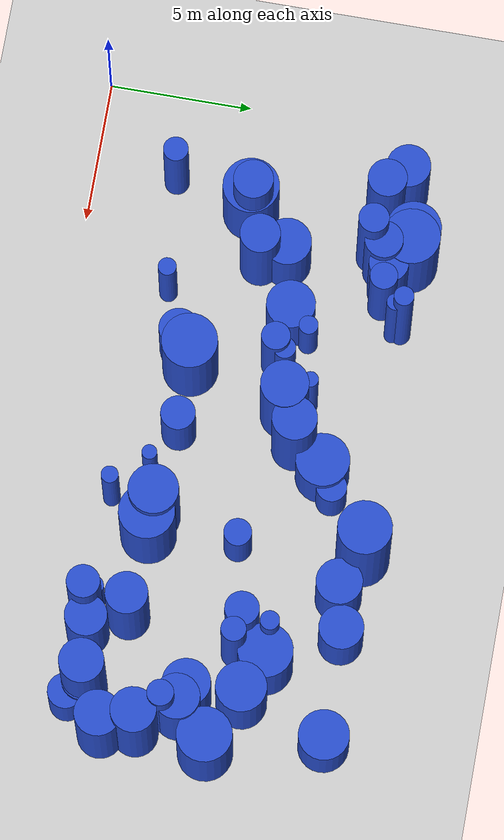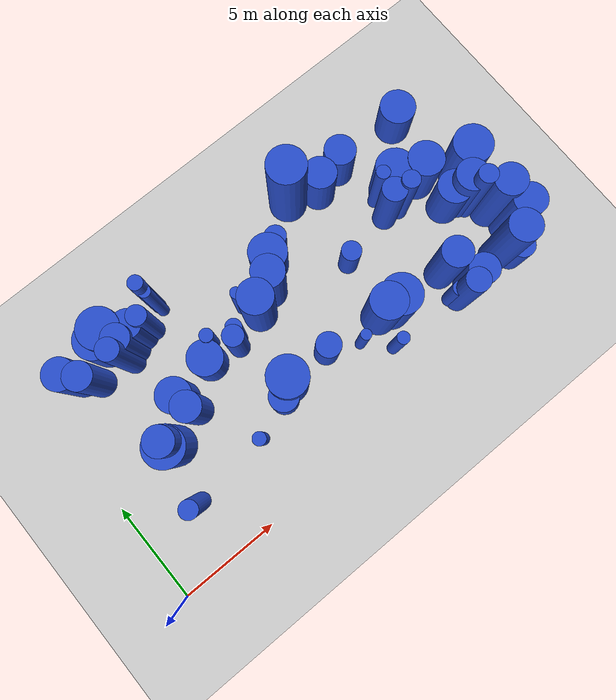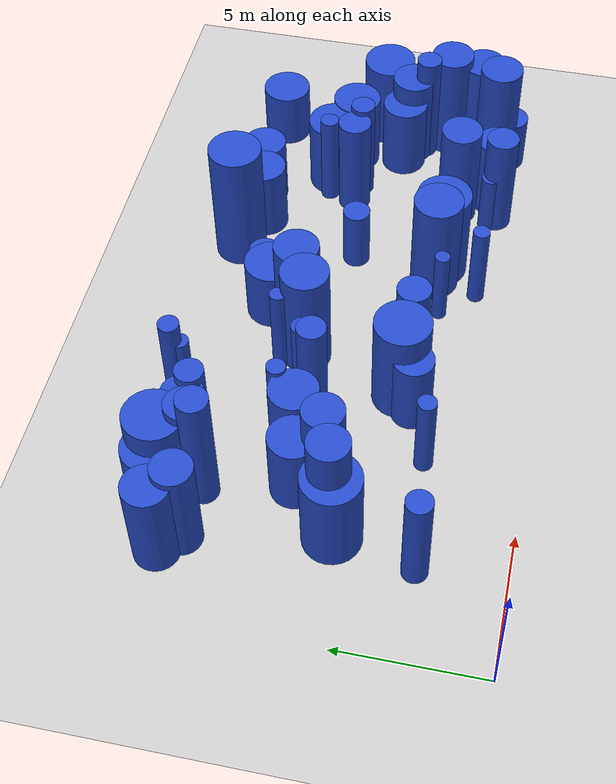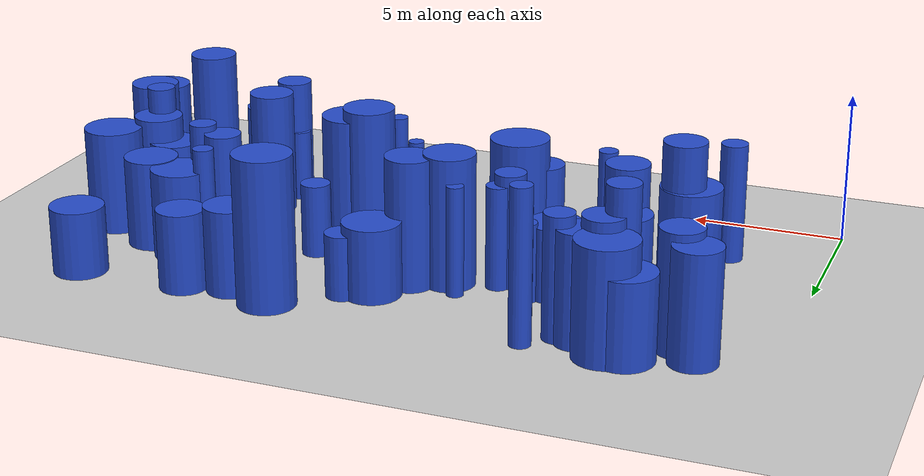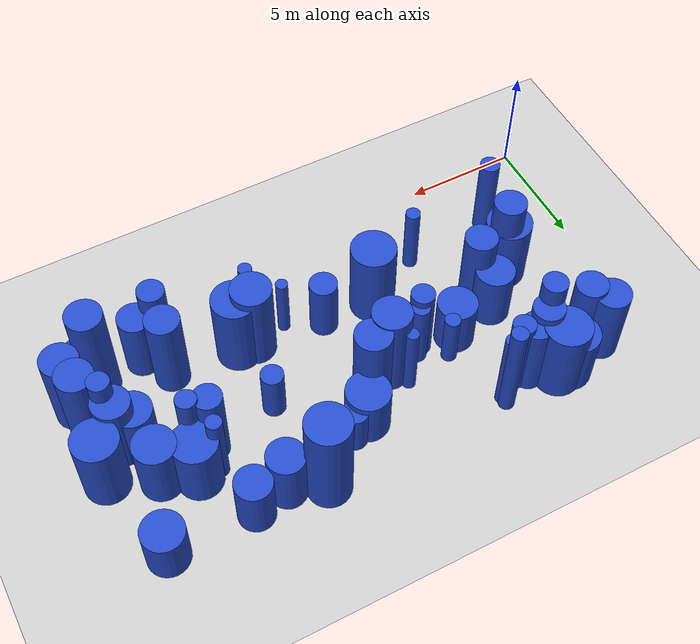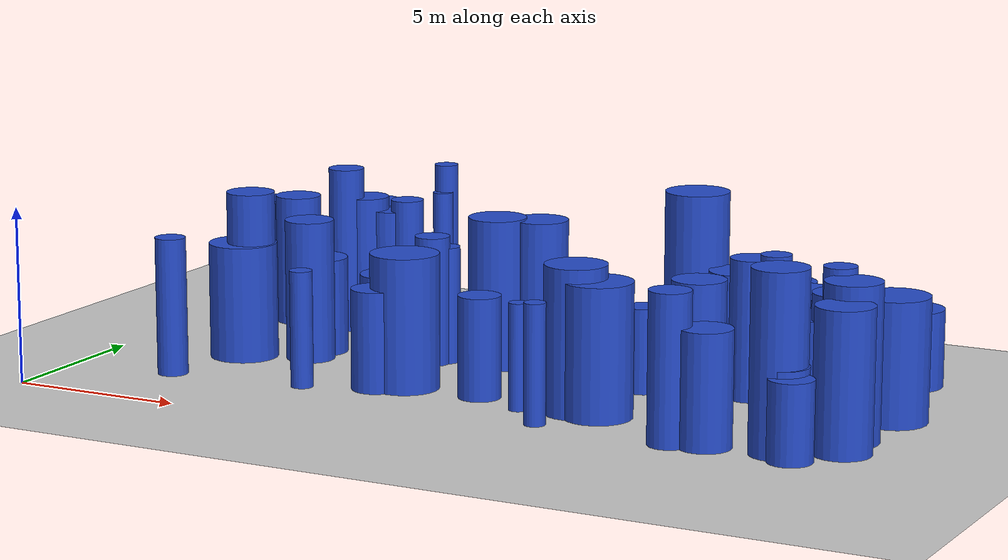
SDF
<sdf version="1.6">
 <world name="default">
  <model name="ground_plane">
   <static>1</static>
   <link name="link">
    <collision name="collision">
     <geometry><plane><normal>0 0 1</normal><size>100 100</size></plane></geometry>
     <surface><friction><ode><mu>100</mu><mu2>50</mu2></ode></friction></surface>
    </collision>
    <visual name="visual">
     <cast_shadows>0</cast_shadows>
     <geometry><plane><normal>0 0 1</normal><size>100 100</size></plane></geometry>
     <material>
      <script><uri>file://media/materials/scripts/gazebo.material</uri><name>Gazebo/Grey</name></script>
     </material>
    </visual>
   </link>
  </model>
  <model name="0">
   <static>0</static>
   <link name="link">
    <inertial>
     <mass>2</mass>
     <inertia><ixx>1.44488</ixx><ixy>0</ixy><ixz>0</ixz><iyy>1.44488</iyy><iyz>0</iyz><izz>0.600062</izz></inertia>
    </inertial>
    <collision name="collision">
     <geometry><cylinder><length>2.6209</length><radius>0.774637</radius></cylinder></geometry>
     <surface><contact><collide_without_contact>1</collide_without_contact></contact></surface>
    </collision>
    <visual name="visual">
     <geometry><cylinder><length>2.6209</length><radius>0.774637</radius></cylinder></geometry>
     <material>
      <script><uri>file://media/materials/scripts/gazebo.material</uri><name>Gazebo/Blue</name></script>
     </material>
    </visual>
    <gravity>0</gravity>
   </link>
   <pose>18.5084 11.3578 1.31045 0 -0 0</pose>
  </model>
  <model name="24">
   <static>0</static>
   <link name="link">
    <inertial>
     <mass>2</mass>
     <inertia><ixx>1.15813</ixx><ixy>0</ixy><ixz>0</ixz><iyy>1.15813</iyy><iyz>0</iyz><izz>0.112947</izz></inertia>
    </inertial>
    <collision name="collision">
     <geometry><cylinder><length>2.57098</length><radius>0.336075</radius></cylinder></geometry>
     <surface><contact><collide_without_contact>1</collide_without_contact></contact></surface>
    </collision>
    <visual name="visual">
     <geometry><cylinder><length>2.57098</length><radius>0.336075</radius></cylinder></geometry>
     <material>
      <script><uri>file://media/materials/scripts/gazebo.material</uri><name>Gazebo/Blue</name></script>
     </material>
    </visual>
    <gravity>0</gravity>
   </link>
   <pose>8.17971 8.45153 1.28549 0 -0 0</pose>
  </model>
  <model name="48">
   <static>0</static>
   <link name="link">
    <inertial>
     <mass>2</mass>
     <inertia><ixx>2.00723</ixx><ixy>0</ixy><ixz>0</ixz><iyy>2.00723</iyy><iyz>0</iyz><izz>0.44952</izz></inertia>
    </inertial>
    <collision name="collision">
     <geometry><cylinder><length>3.27029</length><radius>0.670462</radius></cylinder></geometry>
     <surface><contact><collide_without_contact>1</collide_without_contact></contact></surface>
    </collision>
    <visual name="visual">
     <geometry><cylinder><length>3.27029</length><radius>0.670462</radius></cylinder></geometry>
     <material>
      <script><uri>file://media/materials/scripts/gazebo.material</uri><name>Gazebo/Blue</name></script>
     </material>
    </visual>
    <gravity>0</gravity>
   </link>
   <pose>3.91397 5.71334 1.63514 0 -0 0</pose>
  </model>
  <model name="50">
   <static>0</static>
   <link name="link">
    <inertial>
     <mass>2</mass>
     <inertia><ixx>4.36449</ixx><ixy>0</ixy><ixz>0</ixz><iyy>4.36449</iyy><iyz>0</iyz><izz>0.596492</izz></inertia>
    </inertial>
    <collision name="collision">
     <geometry><cylinder><length>4.93938</length><radius>0.772329</radius></cylinder></geometry>
     <surface><contact><collide_without_contact>1</collide_without_contact></contact></surface>
    </collision>
    <visual name="visual">
     <geometry><cylinder><length>4.93938</length><radius>0.772329</radius></cylinder></geometry>
     <material>
      <script><uri>file://media/materials/scripts/gazebo.material</uri><name>Gazebo/Blue</name></script>
     </material>
    </visual>
    <gravity>0</gravity>
   </link>
   <pose>21.6401 3.0206 2.46969 0 -0 0</pose>
  </model>
  <model name="53">
   <static>0</static>
   <link name="link">
    <inertial>
     <mass>2</mass>
     <inertia><ixx>4.1614</ixx><ixy>0</ixy><ixz>0</ixz><iyy>4.1614</iyy><iyz>0</iyz><izz>0.483095</izz></inertia>
    </inertial>
    <collision name="collision">
     <geometry><cylinder><length>4.84965</length><radius>0.695051</radius></cylinder></geometry>
     <surface><contact><collide_without_contact>1</collide_without_contact></contact></surface>
    </collision>
    <visual name="visual">
     <geometry><cylinder><length>4.84965</length><radius>0.695051</radius></cylinder></geometry>
     <material>
      <script><uri>file://media/materials/scripts/gazebo.material</uri><name>Gazebo/Blue</name></script>
     </material>
    </visual>
    <gravity>0</gravity>
   </link>
   <pose>4.01536 5.78977 2.42483 0 -0 0</pose>
  </model>
  <model name="57">
   <static>0</static>
   <link name="link">
    <inertial>
     <mass>2</mass>
     <inertia><ixx>1.34468</ixx><ixy>0</ixy><ixz>0</ixz><iyy>1.34468</iyy><iyz>0</iyz><izz>0.738276</izz></inertia>
    </inertial>
    <collision name="collision">
     <geometry><cylinder><length>2.41935</length><radius>0.85923</radius></cylinder></geometry>
     <surface><contact><collide_without_contact>1</collide_without_contact></contact></surface>
    </collision>
    <visual name="visual">
     <geometry><cylinder><length>2.41935</length><radius>0.85923</radius></cylinder></geometry>
     <material>
      <script><uri>file://media/materials/scripts/gazebo.material</uri><name>Gazebo/Blue</name></script>
     </material>
    </visual>
    <gravity>0</gravity>
   </link>
   <pose>7.50045 7.71689 1.20967 0 -0 0</pose>
  </model>
  <model name="79">
   <static>0</static>
   <link name="link">
    <inertial>
     <mass>2</mass>
     <inertia><ixx>4.22648</ixx><ixy>0</ixy><ixz>0</ixz><iyy>4.22648</iyy><iyz>0</iyz><izz>0.120914</izz></inertia>
    </inertial>
    <collision name="collision">
     <geometry><cylinder><length>4.99961</length><radius>0.347727</radius></cylinder></geometry>
     <surface><contact><collide_without_contact>1</collide_without_contact></contact></surface>
    </collision>
    <visual name="visual">
     <geometry><cylinder><length>4.99961</length><radius>0.347727</radius></cylinder></geometry>
     <material>
      <script><uri>file://media/materials/scripts/gazebo.material</uri><name>Gazebo/Blue</name></script>
     </material>
    </visual>
    <gravity>0</gravity>
   </link>
   <pose>7.28848 11.5718 2.49981 0 -0 0</pose>
  </model>
  <model name="93">
   <static>0</static>
   <link name="link">
    <inertial>
     <mass>2</mass>
     <inertia><ixx>2.55649</ixx><ixy>0</ixy><ixz>0</ixz><iyy>2.55649</iyy><iyz>0</iyz><izz>0.635989</izz></inertia>
    </inertial>
    <collision name="collision">
     <geometry><cylinder><length>3.66483</length><radius>0.797489</radius></cylinder></geometry>
     <surface><contact><collide_without_contact>1</collide_without_contact></contact></surface>
    </collision>
    <visual name="visual">
     <geometry><cylinder><length>3.66483</length><radius>0.797489</radius></cylinder></geometry>
     <material>
      <script><uri>file://media/materials/scripts/gazebo.material</uri><name>Gazebo/Blue</name></script>
     </material>
    </visual>
    <gravity>0</gravity>
   </link>
   <pose>22.0357 6.31783 1.83241 0 -0 0</pose>
  </model>
  <model name="100">
   <static>0</static>
   <link name="link">
    <inertial>
     <mass>2</mass>
     <inertia><ixx>2.93556</ixx><ixy>0</ixy><ixz>0</ixz><iyy>2.93556</iyy><iyz>0</iyz><izz>0.950215</izz></inertia>
    </inertial>
    <collision name="collision">
     <geometry><cylinder><length>3.84223</length><radius>0.97479</radius></cylinder></geometry>
     <surface><contact><collide_without_contact>1</collide_without_contact></contact></surface>
    </collision>
    <visual name="visual">
     <geometry><cylinder><length>3.84223</length><radius>0.97479</radius></cylinder></geometry>
     <material>
      <script><uri>file://media/materials/scripts/gazebo.material</uri><name>Gazebo/Blue</name></script>
     </material>
    </visual>
    <gravity>0</gravity>
   </link>
   <pose>9.77484 4.57921 1.92111 0 -0 0</pose>
  </model>
  <model name="102">
   <static>0</static>
   <link name="link">
    <inertial>
     <mass>2</mass>
     <inertia><ixx>1.41837</ixx><ixy>0</ixy><ixz>0</ixz><iyy>1.41837</iyy><iyz>0</iyz><izz>0.884479</izz></inertia>
    </inertial>
    <collision name="collision">
     <geometry><cylinder><length>2.42008</length><radius>0.940468</radius></cylinder></geometry>
     <surface><contact><collide_without_contact>1</collide_without_contact></contact></surface>
    </collision>
    <visual name="visual">
     <geometry><cylinder><length>2.42008</length><radius>0.940468</radius></cylinder></geometry>
     <material>
      <script><uri>file://media/materials/scripts/gazebo.material</uri><name>Gazebo/Blue</name></script>
     </material>
    </visual>
    <gravity>0</gravity>
   </link>
   <pose>12.7834 9.73949 1.21004 0 -0 0</pose>
  </model>
  <model name="108">
   <static>0</static>
   <link name="link">
    <inertial>
     <mass>2</mass>
     <inertia><ixx>1.98997</ixx><ixy>0</ixy><ixz>0</ixz><iyy>1.98997</iyy><iyz>0</iyz><izz>0.149514</izz></inertia>
    </inertial>
    <collision name="collision">
     <geometry><cylinder><length>3.38988</length><radius>0.38667</radius></cylinder></geometry>
     <surface><contact><collide_without_contact>1</collide_without_contact></contact></surface>
    </collision>
    <visual name="visual">
     <geometry><cylinder><length>3.38988</length><radius>0.38667</radius></cylinder></geometry>
     <material>
      <script><uri>file://media/materials/scripts/gazebo.material</uri><name>Gazebo/Blue</name></script>
     </material>
    </visual>
    <gravity>0</gravity>
   </link>
   <pose>9.34453 7.81257 1.69494 0 -0 0</pose>
  </model>
  <model name="117">
   <static>0</static>
   <link name="link">
    <inertial>
     <mass>2</mass>
     <inertia><ixx>3.02417</ixx><ixy>0</ixy><ixz>0</ixz><iyy>3.02417</iyy><iyz>0</iyz><izz>0.335481</izz></inertia>
    </inertial>
    <collision name="collision">
     <geometry><cylinder><length>4.13988</length><radius>0.579207</radius></cylinder></geometry>
     <surface><contact><collide_without_contact>1</collide_without_contact></contact></surface>
    </collision>
    <visual name="visual">
     <geometry><cylinder><length>4.13988</length><radius>0.579207</radius></cylinder></geometry>
     <material>
      <script><uri>file://media/materials/scripts/gazebo.material</uri><name>Gazebo/Blue</name></script>
     </material>
    </visual>
    <gravity>0</gravity>
   </link>
   <pose>18.7832 2.53602 2.06994 0 -0 0</pose>
  </model>
  <model name="127">
   <static>0</static>
   <link name="link">
    <inertial>
     <mass>2</mass>
     <inertia><ixx>1.09592</ixx><ixy>0</ixy><ixz>0</ixz><iyy>1.09592</iyy><iyz>0</iyz><izz>0.235453</izz></inertia>
    </inertial>
    <collision name="collision">
     <geometry><cylinder><length>2.42263</length><radius>0.485235</radius></cylinder></geometry>
     <surface><contact><collide_without_contact>1</collide_without_contact></contact></surface>
    </collision>
    <visual name="visual">
     <geometry><cylinder><length>2.42263</length><radius>0.485235</radius></cylinder></geometry>
     <material>
      <script><uri>file://media/materials/scripts/gazebo.material</uri><name>Gazebo/Blue</name></script>
     </material>
    </visual>
    <gravity>0</gravity>
   </link>
   <pose>15.8013 7.30906 1.21132 0 -0 0</pose>
  </model>
  <model name="140">
   <static>0</static>
   <link name="link">
    <inertial>
     <mass>2</mass>
     <inertia><ixx>2.38496</ixx><ixy>0</ixy><ixz>0</ixz><iyy>2.38496</iyy><iyz>0</iyz><izz>0.113818</izz></inertia>
    </inertial>
    <collision name="collision">
     <geometry><cylinder><length>3.73742</length><radius>0.33737</radius></cylinder></geometry>
     <surface><contact><collide_without_contact>1</collide_without_contact></contact></surface>
    </collision>
    <visual name="visual">
     <geometry><cylinder><length>3.73742</length><radius>0.33737</radius></cylinder></geometry>
     <material>
      <script><uri>file://media/materials/scripts/gazebo.material</uri><name>Gazebo/Blue</name></script>
     </material>
    </visual>
    <gravity>0</gravity>
   </link>
   <pose>18.9409 8.96356 1.86871 0 -0 0</pose>
  </model>
  <model name="154">
   <static>0</static>
   <link name="link">
    <inertial>
     <mass>2</mass>
     <inertia>
      <ixx>1.91362</ixx>
      <ixy>0</ixy>
      <ixz>0</ixz>
      <iyy>1.91362</iyy>
      <iyz>0</iyz>
      <izz>0.0902472</izz>
     </inertia>
    </inertial>
    <collision name="collision">
     <geometry><cylinder><length>3.34828</length><radius>0.300412</radius></cylinder></geometry>
     <surface><contact><collide_without_contact>1</collide_without_contact></contact></surface>
    </collision>
    <visual name="visual">
     <geometry><cylinder><length>3.34828</length><radius>0.300412</radius></cylinder></geometry>
     <material>
      <script><uri>file://media/materials/scripts/gazebo.material</uri><name>Gazebo/Blue</name></script>
     </material>
    </visual>
    <gravity>0</gravity>
   </link>
   <pose>14.7819 2.70133 1.67414 0 -0 0</pose>
  </model>
  <model name="156">
   <static>0</static>
   <link name="link">
    <inertial>
     <mass>2</mass>
     <inertia><ixx>2.78994</ixx><ixy>0</ixy><ixz>0</ixz><iyy>2.78994</iyy><iyz>0</iyz><izz>0.355197</izz></inertia>
    </inertial>
    <collision name="collision">
     <geometry><cylinder><length>3.95905</length><radius>0.595984</radius></cylinder></geometry>
     <surface><contact><collide_without_contact>1</collide_without_contact></contact></surface>
    </collision>
    <visual name="visual">
     <geometry><cylinder><length>3.95905</length><radius>0.595984</radius></cylinder></geometry>
     <material>
      <script><uri>file://media/materials/scripts/gazebo.material</uri><name>Gazebo/Blue</name></script>
     </material>
    </visual>
    <gravity>0</gravity>
   </link>
   <pose>18.7412 7.97413 1.97952 0 -0 0</pose>
  </model>
  <model name="158">
   <static>0</static>
   <link name="link">
    <inertial>
     <mass>2</mass>
     <inertia>
      <ixx>2.98725</ixx>
      <ixy>0</ixy>
      <ixz>0</ixz>
      <iyy>2.98725</iyy>
      <iyz>0</iyz>
      <izz>0.0869814</izz>
     </inertia>
    </inertial>
    <collision name="collision">
     <geometry><cylinder><length>4.20268</length><radius>0.294926</radius></cylinder></geometry>
     <surface><contact><collide_without_contact>1</collide_without_contact></contact></surface>
    </collision>
    <visual name="visual">
     <geometry><cylinder><length>4.20268</length><radius>0.294926</radius></cylinder></geometry>
     <material>
      <script><uri>file://media/materials/scripts/gazebo.material</uri><name>Gazebo/Blue</name></script>
     </material>
    </visual>
    <gravity>0</gravity>
   </link>
   <pose>7.3226 11.294 2.10134 0 -0 0</pose>
  </model>
  <model name="172">
   <static>0</static>
   <link name="link">
    <inertial>
     <mass>2</mass>
     <inertia><ixx>1.05244</ixx><ixy>0</ixy><ixz>0</ixz><iyy>1.05244</iyy><iyz>0</iyz><izz>0.132693</izz></inertia>
    </inertial>
    <collision name="collision">
     <geometry><cylinder><length>2.4324</length><radius>0.36427</radius></cylinder></geometry>
     <surface><contact><collide_without_contact>1</collide_without_contact></contact></surface>
    </collision>
    <visual name="visual">
     <geometry><cylinder><length>2.4324</length><radius>0.36427</radius></cylinder></geometry>
     <material>
      <script><uri>file://media/materials/scripts/gazebo.material</uri><name>Gazebo/Blue</name></script>
     </material>
    </visual>
    <gravity>0</gravity>
   </link>
   <pose>18.4969 2.7797 1.2162 0 -0 0</pose>
  </model>
  <model name="174">
   <static>0</static>
   <link name="link">
    <inertial>
     <mass>2</mass>
     <inertia><ixx>4.14774</ixx><ixy>0</ixy><ixz>0</ixz><iyy>4.14774</iyy><iyz>0</iyz><izz>0.279668</izz></inertia>
    </inertial>
    <collision name="collision">
     <geometry><cylinder><length>4.90382</length><radius>0.528837</radius></cylinder></geometry>
     <surface><contact><collide_without_contact>1</collide_without_contact></contact></surface>
    </collision>
    <visual name="visual">
     <geometry><cylinder><length>4.90382</length><radius>0.528837</radius></cylinder></geometry>
     <material>
      <script><uri>file://media/materials/scripts/gazebo.material</uri><name>Gazebo/Blue</name></script>
     </material>
    </visual>
    <gravity>0</gravity>
   </link>
   <pose>4.68632 10.0982 2.45191 0 -0 0</pose>
  </model>
  <model name="184">
   <static>0</static>
   <link name="link">
    <inertial>
     <mass>2</mass>
     <inertia><ixx>3.46192</ixx><ixy>0</ixy><ixz>0</ixz><iyy>3.46192</iyy><iyz>0</iyz><izz>0.212884</izz></inertia>
    </inertial>
    <collision name="collision">
     <geometry><cylinder><length>4.48696</length><radius>0.461393</radius></cylinder></geometry>
     <surface><contact><collide_without_contact>1</collide_without_contact></contact></surface>
    </collision>
    <visual name="visual">
     <geometry><cylinder><length>4.48696</length><radius>0.461393</radius></cylinder></geometry>
     <material>
      <script><uri>file://media/materials/scripts/gazebo.material</uri><name>Gazebo/Blue</name></script>
     </material>
    </visual>
    <gravity>0</gravity>
   </link>
   <pose>22.1808 5.79471 2.24348 0 -0 0</pose>
  </model>
  <model name="192">
   <static>0</static>
   <link name="link">
    <inertial>
     <mass>2</mass>
     <inertia><ixx>1.96292</ixx><ixy>0</ixy><ixz>0</ixz><iyy>1.96292</iyy><iyz>0</iyz><izz>0.540274</izz></inertia>
    </inertial>
    <collision name="collision">
     <geometry><cylinder><length>3.18695</length><radius>0.735034</radius></cylinder></geometry>
     <surface><contact><collide_without_contact>1</collide_without_contact></contact></surface>
    </collision>
    <visual name="visual">
     <geometry><cylinder><length>3.18695</length><radius>0.735034</radius></cylinder></geometry>
     <material>
      <script><uri>file://media/materials/scripts/gazebo.material</uri><name>Gazebo/Blue</name></script>
     </material>
    </visual>
    <gravity>0</gravity>
   </link>
   <pose>19.703 2.76617 1.59348 0 -0 0</pose>
  </model>
  <model name="196">
   <static>0</static>
   <link name="link">
    <inertial>
     <mass>2</mass>
     <inertia><ixx>3.13099</ixx><ixy>0</ixy><ixz>0</ixz><iyy>3.13099</iyy><iyz>0</iyz><izz>0.543498</izz></inertia>
    </inertial>
    <collision name="collision">
     <geometry><cylinder><length>4.14191</length><radius>0.737223</radius></cylinder></geometry>
     <surface><contact><collide_without_contact>1</collide_without_contact></contact></surface>
    </collision>
    <visual name="visual">
     <geometry><cylinder><length>4.14191</length><radius>0.737223</radius></cylinder></geometry>
     <material>
      <script><uri>file://media/materials/scripts/gazebo.material</uri><name>Gazebo/Blue</name></script>
     </material>
    </visual>
    <gravity>0</gravity>
   </link>
   <pose>18.9235 4.0465 2.07096 0 -0 0</pose>
  </model>
  <model name="199">
   <static>0</static>
   <link name="link">
    <inertial>
     <mass>2</mass>
     <inertia><ixx>2.91291</ixx><ixy>0</ixy><ixz>0</ixz><iyy>2.91291</iyy><iyz>0</iyz><izz>0.448558</izz></inertia>
    </inertial>
    <collision name="collision">
     <geometry><cylinder><length>4.01644</length><radius>0.669745</radius></cylinder></geometry>
     <surface><contact><collide_without_contact>1</collide_without_contact></contact></surface>
    </collision>
    <visual name="visual">
     <geometry><cylinder><length>4.01644</length><radius>0.669745</radius></cylinder></geometry>
     <material>
      <script><uri>file://media/materials/scripts/gazebo.material</uri><name>Gazebo/Blue</name></script>
     </material>
    </visual>
    <gravity>0</gravity>
   </link>
   <pose>5.11865 10.5389 2.00822 0 -0 0</pose>
  </model>
  <model name="204">
   <static>0</static>
   <link name="link">
    <inertial>
     <mass>2</mass>
     <inertia><ixx>1.57546</ixx><ixy>0</ixy><ixz>0</ixz><iyy>1.57546</iyy><iyz>0</iyz><izz>0.365476</izz></inertia>
    </inertial>
    <collision name="collision">
     <geometry><cylinder><length>2.89073</length><radius>0.604546</radius></cylinder></geometry>
     <surface><contact><collide_without_contact>1</collide_without_contact></contact></surface>
    </collision>
    <visual name="visual">
     <geometry><cylinder><length>2.89073</length><radius>0.604546</radius></cylinder></geometry>
     <material>
      <script><uri>file://media/materials/scripts/gazebo.material</uri><name>Gazebo/Blue</name></script>
     </material>
    </visual>
    <gravity>0</gravity>
   </link>
   <pose>12.1209 4.58324 1.44537 0 -0 0</pose>
  </model>
  <model name="213">
   <static>0</static>
   <link name="link">
    <inertial>
     <mass>2</mass>
     <inertia><ixx>2.90427</ixx><ixy>0</ixy><ixz>0</ixz><iyy>2.90427</iyy><iyz>0</iyz><izz>0.642035</izz></inertia>
    </inertial>
    <collision name="collision">
     <geometry><cylinder><length>3.93695</length><radius>0.801271</radius></cylinder></geometry>
     <surface><contact><collide_without_contact>1</collide_without_contact></contact></surface>
    </collision>
    <visual name="visual">
     <geometry><cylinder><length>3.93695</length><radius>0.801271</radius></cylinder></geometry>
     <material>
      <script><uri>file://media/materials/scripts/gazebo.material</uri><name>Gazebo/Blue</name></script>
     </material>
    </visual>
    <gravity>0</gravity>
   </link>
   <pose>23.1116 3.80859 1.96847 0 -0 0</pose>
  </model>
  <model name="235">
   <static>0</static>
   <link name="link">
    <inertial>
     <mass>2</mass>
     <inertia><ixx>1.18672</ixx><ixy>0</ixy><ixz>0</ixz><iyy>1.18672</iyy><iyz>0</iyz><izz>0.509115</izz></inertia>
    </inertial>
    <collision name="collision">
     <geometry><cylinder><length>2.36495</length><radius>0.713523</radius></cylinder></geometry>
     <surface><contact><collide_without_contact>1</collide_without_contact></contact></surface>
    </collision>
    <visual name="visual">
     <geometry><cylinder><length>2.36495</length><radius>0.713523</radius></cylinder></geometry>
     <material>
      <script><uri>file://media/materials/scripts/gazebo.material</uri><name>Gazebo/Blue</name></script>
     </material>
    </visual>
    <gravity>0</gravity>
   </link>
   <pose>21.7555 2.99197 1.18247 0 -0 0</pose>
  </model>
  <model name="252">
   <static>0</static>
   <link name="link">
    <inertial>
     <mass>2</mass>
     <inertia>
      <ixx>0.879432</ixx>
      <ixy>0</ixy>
      <ixz>0</ixz>
      <iyy>0.879432</iyy>
      <iyz>0</iyz>
      <izz>0.286653</izz>
     </inertia>
    </inertial>
    <collision name="collision">
     <geometry><cylinder><length>2.10158</length><radius>0.5354</radius></cylinder></geometry>
     <surface><contact><collide_without_contact>1</collide_without_contact></contact></surface>
    </collision>
    <visual name="visual">
     <geometry><cylinder><length>2.10158</length><radius>0.5354</radius></cylinder></geometry>
     <material>
      <script><uri>file://media/materials/scripts/gazebo.material</uri><name>Gazebo/Blue</name></script>
     </material>
    </visual>
    <gravity>0</gravity>
   </link>
   <pose>13.5923 10.1878 1.05079 0 -0 0</pose>
  </model>
  <model name="276">
   <static>0</static>
   <link name="link">
    <inertial>
     <mass>2</mass>
     <inertia><ixx>1.75317</ixx><ixy>0</ixy><ixz>0</ixz><iyy>1.75317</iyy><iyz>0</iyz><izz>0.912581</izz></inertia>
    </inertial>
    <collision name="collision">
     <geometry><cylinder><length>2.78949</length><radius>0.955291</radius></cylinder></geometry>
     <surface><contact><collide_without_contact>1</collide_without_contact></contact></surface>
    </collision>
    <visual name="visual">
     <geometry><cylinder><length>2.78949</length><radius>0.955291</radius></cylinder></geometry>
     <material>
      <script><uri>file://media/materials/scripts/gazebo.material</uri><name>Gazebo/Blue</name></script>
     </material>
    </visual>
    <gravity>0</gravity>
   </link>
   <pose>4.16823 11.4646 1.39475 0 -0 0</pose>
  </model>
  <model name="291">
   <static>0</static>
   <link name="link">
    <inertial>
     <mass>2</mass>
     <inertia><ixx>1.8897</ixx><ixy>0</ixy><ixz>0</ixz><iyy>1.8897</iyy><iyz>0</iyz><izz>0.777745</izz></inertia>
    </inertial>
    <collision name="collision">
     <geometry><cylinder><length>3.00083</length><radius>0.881898</radius></cylinder></geometry>
     <surface><contact><collide_without_contact>1</collide_without_contact></contact></surface>
    </collision>
    <visual name="visual">
     <geometry><cylinder><length>3.00083</length><radius>0.881898</radius></cylinder></geometry>
     <material>
      <script><uri>file://media/materials/scripts/gazebo.material</uri><name>Gazebo/Blue</name></script>
     </material>
    </visual>
    <gravity>0</gravity>
   </link>
   <pose>21.1994 8.37368 1.50041 0 -0 0</pose>
  </model>
  <model name="304">
   <static>0</static>
   <link name="link">
    <inertial>
     <mass>2</mass>
     <inertia><ixx>3.49645</ixx><ixy>0</ixy><ixz>0</ixz><iyy>3.49645</iyy><iyz>0</iyz><izz>0.70103</izz></inertia>
    </inertial>
    <collision name="collision">
     <geometry><cylinder><length>4.34461</length><radius>0.837275</radius></cylinder></geometry>
     <surface><contact><collide_without_contact>1</collide_without_contact></contact></surface>
    </collision>
    <visual name="visual">
     <geometry><cylinder><length>4.34461</length><radius>0.837275</radius></cylinder></geometry>
     <material>
      <script><uri>file://media/materials/scripts/gazebo.material</uri><name>Gazebo/Blue</name></script>
     </material>
    </visual>
    <gravity>0</gravity>
   </link>
   <pose>10.8564 8.06965 2.1723 0 -0 0</pose>
  </model>
  <model name="307">
   <static>0</static>
   <link name="link">
    <inertial>
     <mass>2</mass>
     <inertia>
      <ixx>2.20184</ixx>
      <ixy>0</ixy>
      <ixz>0</ixz>
      <iyy>2.20184</iyy>
      <iyz>0</iyz>
      <izz>0.0771611</izz>
     </inertia>
    </inertial>
    <collision name="collision">
     <geometry><cylinder><length>3.60271</length><radius>0.277779</radius></cylinder></geometry>
     <surface><contact><collide_without_contact>1</collide_without_contact></contact></surface>
    </collision>
    <visual name="visual">
     <geometry><cylinder><length>3.60271</length><radius>0.277779</radius></cylinder></geometry>
     <material>
      <script><uri>file://media/materials/scripts/gazebo.material</uri><name>Gazebo/Blue</name></script>
     </material>
    </visual>
    <gravity>0</gravity>
   </link>
   <pose>10.3598 8.88303 1.80136 0 -0 0</pose>
  </model>
  <model name="328">
   <static>0</static>
   <link name="link">
    <inertial>
     <mass>2</mass>
     <inertia><ixx>2.74626</ixx><ixy>0</ixy><ixz>0</ixz><iyy>2.74626</iyy><iyz>0</iyz><izz>0.465965</izz></inertia>
    </inertial>
    <collision name="collision">
     <geometry><cylinder><length>3.88326</length><radius>0.682616</radius></cylinder></geometry>
     <surface><contact><collide_without_contact>1</collide_without_contact></contact></surface>
    </collision>
    <visual name="visual">
     <geometry><cylinder><length>3.88326</length><radius>0.682616</radius></cylinder></geometry>
     <material>
      <script><uri>file://media/materials/scripts/gazebo.material</uri><name>Gazebo/Blue</name></script>
     </material>
    </visual>
    <gravity>0</gravity>
   </link>
   <pose>2.87379 10.2937 1.94163 0 -0 0</pose>
  </model>
  <model name="330">
   <static>0</static>
   <link name="link">
    <inertial>
     <mass>2</mass>
     <inertia><ixx>1.76866</ixx><ixy>0</ixy><ixz>0</ixz><iyy>1.76866</iyy><iyz>0</iyz><izz>0.696442</izz></inertia>
    </inertial>
    <collision name="collision">
     <geometry><cylinder><length>2.91936</length><radius>0.834531</radius></cylinder></geometry>
     <surface><contact><collide_without_contact>1</collide_without_contact></contact></surface>
    </collision>
    <visual name="visual">
     <geometry><cylinder><length>2.91936</length><radius>0.834531</radius></cylinder></geometry>
     <material>
      <script><uri>file://media/materials/scripts/gazebo.material</uri><name>Gazebo/Blue</name></script>
     </material>
    </visual>
    <gravity>0</gravity>
   </link>
   <pose>21.3621 6.5215 1.45968 0 -0 0</pose>
  </model>
  <model name="338">
   <static>0</static>
   <link name="link">
    <inertial>
     <mass>2</mass>
     <inertia><ixx>1.61933</ixx><ixy>0</ixy><ixz>0</ixz><iyy>1.61933</iyy><iyz>0</iyz><izz>0.490201</izz></inertia>
    </inertial>
    <collision name="collision">
     <geometry><cylinder><length>2.87147</length><radius>0.700144</radius></cylinder></geometry>
     <surface><contact><collide_without_contact>1</collide_without_contact></contact></surface>
    </collision>
    <visual name="visual">
     <geometry><cylinder><length>2.87147</length><radius>0.700144</radius></cylinder></geometry>
     <material>
      <script><uri>file://media/materials/scripts/gazebo.material</uri><name>Gazebo/Blue</name></script>
     </material>
    </visual>
    <gravity>0</gravity>
   </link>
   <pose>9.12878 4.08201 1.43574 0 -0 0</pose>
  </model>
  <model name="359">
   <static>0</static>
   <link name="link">
    <inertial>
     <mass>2</mass>
     <inertia><ixx>2.74486</ixx><ixy>0</ixy><ixz>0</ixz><iyy>2.74486</iyy><iyz>0</iyz><izz>0.980701</izz></inertia>
    </inertial>
    <collision name="collision">
     <geometry><cylinder><length>3.67792</length><radius>0.990303</radius></cylinder></geometry>
     <surface><contact><collide_without_contact>1</collide_without_contact></contact></surface>
    </collision>
    <visual name="visual">
     <geometry><cylinder><length>3.67792</length><radius>0.990303</radius></cylinder></geometry>
     <material>
      <script><uri>file://media/materials/scripts/gazebo.material</uri><name>Gazebo/Blue</name></script>
     </material>
    </visual>
    <gravity>0</gravity>
   </link>
   <pose>4.74603 11.4586 1.83896 0 -0 0</pose>
  </model>
  <model name="377">
   <static>0</static>
   <link name="link">
    <inertial>
     <mass>2</mass>
     <inertia><ixx>1.66642</ixx><ixy>0</ixy><ixz>0</ixz><iyy>1.66642</iyy><iyz>0</iyz><izz>0.711022</izz></inertia>
    </inertial>
    <collision name="collision">
     <geometry><cylinder><length>2.80454</length><radius>0.843221</radius></cylinder></geometry>
     <surface><contact><collide_without_contact>1</collide_without_contact></contact></surface>
    </collision>
    <visual name="visual">
     <geometry><cylinder><length>2.80454</length><radius>0.843221</radius></cylinder></geometry>
     <material>
      <script><uri>file://media/materials/scripts/gazebo.material</uri><name>Gazebo/Blue</name></script>
     </material>
    </visual>
    <gravity>0</gravity>
   </link>
   <pose>5.41048 7.23137 1.40227 0 -0 0</pose>
  </model>
  <model name="378">
   <static>0</static>
   <link name="link">
    <inertial>
     <mass>2</mass>
     <inertia><ixx>3.36487</ixx><ixy>0</ixy><ixz>0</ixz><iyy>3.36487</iyy><iyz>0</iyz><izz>0.615761</izz></inertia>
    </inertial>
    <collision name="collision">
     <geometry><cylinder><length>4.28275</length><radius>0.784704</radius></cylinder></geometry>
     <surface><contact><collide_without_contact>1</collide_without_contact></contact></surface>
    </collision>
    <visual name="visual">
     <geometry><cylinder><length>4.28275</length><radius>0.784704</radius></cylinder></geometry>
     <material>
      <script><uri>file://media/materials/scripts/gazebo.material</uri><name>Gazebo/Blue</name></script>
     </material>
    </visual>
    <gravity>0</gravity>
   </link>
   <pose>11.9743 8.60409 2.14137 0 -0 0</pose>
  </model>
  <model name="396">
   <static>0</static>
   <link name="link">
    <inertial>
     <mass>2</mass>
     <inertia><ixx>1.66413</ixx><ixy>0</ixy><ixz>0</ixz><iyy>1.66413</iyy><iyz>0</iyz><izz>0.646665</izz></inertia>
    </inertial>
    <collision name="collision">
     <geometry><cylinder><length>2.83633</length><radius>0.804155</radius></cylinder></geometry>
     <surface><contact><collide_without_contact>1</collide_without_contact></contact></surface>
    </collision>
    <visual name="visual">
     <geometry><cylinder><length>2.83633</length><radius>0.804155</radius></cylinder></geometry>
     <material>
      <script><uri>file://media/materials/scripts/gazebo.material</uri><name>Gazebo/Blue</name></script>
     </material>
    </visual>
    <gravity>0</gravity>
   </link>
   <pose>16.9971 11.0285 1.41817 0 -0 0</pose>
  </model>
  <model name="402">
   <static>0</static>
   <link name="link">
    <inertial>
     <mass>2</mass>
     <inertia><ixx>2.82013</ixx><ixy>0</ixy><ixz>0</ixz><iyy>2.82013</iyy><iyz>0</iyz><izz>0.943937</izz></inertia>
    </inertial>
    <collision name="collision">
     <geometry><cylinder><length>3.75353</length><radius>0.971564</radius></cylinder></geometry>
     <surface><contact><collide_without_contact>1</collide_without_contact></contact></surface>
    </collision>
    <visual name="visual">
     <geometry><cylinder><length>3.75353</length><radius>0.971564</radius></cylinder></geometry>
     <material>
      <script><uri>file://media/materials/scripts/gazebo.material</uri><name>Gazebo/Blue</name></script>
     </material>
    </visual>
    <gravity>0</gravity>
   </link>
   <pose>15.9194 4.19298 1.87676 0 -0 0</pose>
  </model>
  <model name="409">
   <static>0</static>
   <link name="link">
    <inertial>
     <mass>2</mass>
     <inertia><ixx>2.37367</ixx><ixy>0</ixy><ixz>0</ixz><iyy>2.37367</iyy><iyz>0</iyz><izz>0.975514</izz></inertia>
    </inertial>
    <collision name="collision">
     <geometry><cylinder><length>3.36385</length><radius>0.987681</radius></cylinder></geometry>
     <surface><contact><collide_without_contact>1</collide_without_contact></contact></surface>
    </collision>
    <visual name="visual">
     <geometry><cylinder><length>3.36385</length><radius>0.987681</radius></cylinder></geometry>
     <material>
      <script><uri>file://media/materials/scripts/gazebo.material</uri><name>Gazebo/Blue</name></script>
     </material>
    </visual>
    <gravity>0</gravity>
   </link>
   <pose>3.79973 5.6745 1.68192 0 -0 0</pose>
  </model>
  <model name="423">
   <static>0</static>
   <link name="link">
    <inertial>
     <mass>2</mass>
     <inertia><ixx>1.21247</ixx><ixy>0</ixy><ixz>0</ixz><iyy>1.21247</iyy><iyz>0</iyz><izz>0.772759</izz></inertia>
    </inertial>
    <collision name="collision">
     <geometry><cylinder><length>2.22633</length><radius>0.879067</radius></cylinder></geometry>
     <surface><contact><collide_without_contact>1</collide_without_contact></contact></surface>
    </collision>
    <visual name="visual">
     <geometry><cylinder><length>2.22633</length><radius>0.879067</radius></cylinder></geometry>
     <material>
      <script><uri>file://media/materials/scripts/gazebo.material</uri><name>Gazebo/Blue</name></script>
     </material>
    </visual>
    <gravity>0</gravity>
   </link>
   <pose>22.2067 11.3954 1.11317 0 -0 0</pose>
  </model>
  <model name="429">
   <static>0</static>
   <link name="link">
    <inertial>
     <mass>2</mass>
     <inertia><ixx>1.89122</ixx><ixy>0</ixy><ixz>0</ixz><iyy>1.89122</iyy><iyz>0</iyz><izz>0.10197</izz></inertia>
    </inertial>
    <collision name="collision">
     <geometry><cylinder><length>3.32287</length><radius>0.319327</radius></cylinder></geometry>
     <surface><contact><collide_without_contact>1</collide_without_contact></contact></surface>
    </collision>
    <visual name="visual">
     <geometry><cylinder><length>3.32287</length><radius>0.319327</radius></cylinder></geometry>
     <material>
      <script><uri>file://media/materials/scripts/gazebo.material</uri><name>Gazebo/Blue</name></script>
     </material>
    </visual>
    <gravity>0</gravity>
   </link>
   <pose>7.16736 3.32977 1.66143 0 -0 0</pose>
  </model>
  <model name="432">
   <static>0</static>
   <link name="link">
    <inertial>
     <mass>2</mass>
     <inertia>
      <ixx>1.52875</ixx>
      <ixy>0</ixy>
      <ixz>0</ixz>
      <iyy>1.52875</iyy>
      <iyz>0</iyz>
      <izz>0.0690543</izz>
     </inertia>
    </inertial>
    <collision name="collision">
     <geometry><cylinder><length>2.99422</length><radius>0.262782</radius></cylinder></geometry>
     <surface><contact><collide_without_contact>1</collide_without_contact></contact></surface>
    </collision>
    <visual name="visual">
     <geometry><cylinder><length>2.99422</length><radius>0.262782</radius></cylinder></geometry>
     <material>
      <script><uri>file://media/materials/scripts/gazebo.material</uri><name>Gazebo/Blue</name></script>
     </material>
    </visual>
    <gravity>0</gravity>
   </link>
   <pose>13.6809 3.87176 1.49711 0 -0 0</pose>
  </model>
  <model name="434">
   <static>0</static>
   <link name="link">
    <inertial>
     <mass>2</mass>
     <inertia><ixx>3.41791</ixx><ixy>0</ixy><ixz>0</ixz><iyy>3.41791</iyy><iyz>0</iyz><izz>0.61902</izz></inertia>
    </inertial>
    <collision name="collision">
     <geometry><cylinder><length>4.31861</length><radius>0.786779</radius></cylinder></geometry>
     <surface><contact><collide_without_contact>1</collide_without_contact></contact></surface>
    </collision>
    <visual name="visual">
     <geometry><cylinder><length>4.31861</length><radius>0.786779</radius></cylinder></geometry>
     <material>
      <script><uri>file://media/materials/scripts/gazebo.material</uri><name>Gazebo/Blue</name></script>
     </material>
    </visual>
    <gravity>0</gravity>
   </link>
   <pose>22.8736 4.99208 2.15931 0 -0 0</pose>
  </model>
  <model name="438">
   <static>0</static>
   <link name="link">
    <inertial>
     <mass>2</mass>
     <inertia><ixx>2.44541</ixx><ixy>0</ixy><ixz>0</ixz><iyy>2.44541</iyy><iyz>0</iyz><izz>0.479868</izz></inertia>
    </inertial>
    <collision name="collision">
     <geometry><cylinder><length>3.6377</length><radius>0.692725</radius></cylinder></geometry>
     <surface><contact><collide_without_contact>1</collide_without_contact></contact></surface>
    </collision>
    <visual name="visual">
     <geometry><cylinder><length>3.6377</length><radius>0.692725</radius></cylinder></geometry>
     <material>
      <script><uri>file://media/materials/scripts/gazebo.material</uri><name>Gazebo/Blue</name></script>
     </material>
    </visual>
    <gravity>0</gravity>
   </link>
   <pose>5.80409 10.8338 1.81885 0 -0 0</pose>
  </model>
  <model name="443">
   <static>0</static>
   <link name="link">
    <inertial>
     <mass>2</mass>
     <inertia><ixx>2.7666</ixx><ixy>0</ixy><ixz>0</ixz><iyy>2.7666</iyy><iyz>0</iyz><izz>0.233836</izz></inertia>
    </inertial>
    <collision name="collision">
     <geometry><cylinder><length>3.98724</length><radius>0.483566</radius></cylinder></geometry>
     <surface><contact><collide_without_contact>1</collide_without_contact></contact></surface>
    </collision>
    <visual name="visual">
     <geometry><cylinder><length>3.98724</length><radius>0.483566</radius></cylinder></geometry>
     <material>
      <script><uri>file://media/materials/scripts/gazebo.material</uri><name>Gazebo/Blue</name></script>
     </material>
    </visual>
    <gravity>0</gravity>
   </link>
   <pose>6.40285 10.7498 1.99362 0 -0 0</pose>
  </model>
  <model name="450">
   <static>0</static>
   <link name="link">
    <inertial>
     <mass>2</mass>
     <inertia><ixx>2.97429</ixx><ixy>0</ixy><ixz>0</ixz><iyy>2.97429</iyy><iyz>0</iyz><izz>0.190759</izz></inertia>
    </inertial>
    <collision name="collision">
     <geometry><cylinder><length>4.15614</length><radius>0.436759</radius></cylinder></geometry>
     <surface><contact><collide_without_contact>1</collide_without_contact></contact></surface>
    </collision>
    <visual name="visual">
     <geometry><cylinder><length>4.15614</length><radius>0.436759</radius></cylinder></geometry>
     <material>
      <script><uri>file://media/materials/scripts/gazebo.material</uri><name>Gazebo/Blue</name></script>
     </material>
    </visual>
    <gravity>0</gravity>
   </link>
   <pose>19.5317 7.82268 2.07807 0 -0 0</pose>
  </model>
  <model name="464">
   <static>0</static>
   <link name="link">
    <inertial>
     <mass>2</mass>
     <inertia><ixx>2.69282</ixx><ixy>0</ixy><ixz>0</ixz><iyy>2.69282</iyy><iyz>0</iyz><izz>0.190512</izz></inertia>
    </inertial>
    <collision name="collision">
     <geometry><cylinder><length>3.94783</length><radius>0.436476</radius></cylinder></geometry>
     <surface><contact><collide_without_contact>1</collide_without_contact></contact></surface>
    </collision>
    <visual name="visual">
     <geometry><cylinder><length>3.94783</length><radius>0.436476</radius></cylinder></geometry>
     <material>
      <script><uri>file://media/materials/scripts/gazebo.material</uri><name>Gazebo/Blue</name></script>
     </material>
    </visual>
    <gravity>0</gravity>
   </link>
   <pose>3.13166 2.91847 1.97392 0 -0 0</pose>
  </model>
  <model name="465">
   <static>0</static>
   <link name="link">
    <inertial>
     <mass>2</mass>
     <inertia><ixx>2.44673</ixx><ixy>0</ixy><ixz>0</ixz><iyy>2.44673</iyy><iyz>0</iyz><izz>0.255785</izz></inertia>
    </inertial>
    <collision name="collision">
     <geometry><cylinder><length>3.73002</length><radius>0.505752</radius></cylinder></geometry>
     <surface><contact><collide_without_contact>1</collide_without_contact></contact></surface>
    </collision>
    <visual name="visual">
     <geometry><cylinder><length>3.73002</length><radius>0.505752</radius></cylinder></geometry>
     <material>
      <script><uri>file://media/materials/scripts/gazebo.material</uri><name>Gazebo/Blue</name></script>
     </material>
    </visual>
    <gravity>0</gravity>
   </link>
   <pose>9.07115 7.45732 1.86501 0 -0 0</pose>
  </model>
  <model name="472">
   <static>0</static>
   <link name="link">
    <inertial>
     <mass>2</mass>
     <inertia><ixx>3.22581</ixx><ixy>0</ixy><ixz>0</ixz><iyy>3.22581</iyy><iyz>0</iyz><izz>0.762818</izz></inertia>
    </inertial>
    <collision name="collision">
     <geometry><cylinder><length>4.13115</length><radius>0.873394</radius></cylinder></geometry>
     <surface><contact><collide_without_contact>1</collide_without_contact></contact></surface>
    </collision>
    <visual name="visual">
     <geometry><cylinder><length>4.13115</length><radius>0.873394</radius></cylinder></geometry>
     <material>
      <script><uri>file://media/materials/scripts/gazebo.material</uri><name>Gazebo/Blue</name></script>
     </material>
    </visual>
    <gravity>0</gravity>
   </link>
   <pose>15.2046 4.30191 2.06558 0 -0 0</pose>
  </model>
  <model name="478">
   <static>0</static>
   <link name="link">
    <inertial>
     <mass>2</mass>
     <inertia>
      <ixx>0.989649</ixx>
      <ixy>0</ixy>
      <ixz>0</ixz>
      <iyy>0.989649</iyy>
      <iyz>0</iyz>
      <izz>0.381596</izz>
     </inertia>
    </inertial>
    <collision name="collision">
     <geometry><cylinder><length>2.18932</length><radius>0.617734</radius></cylinder></geometry>
     <surface><contact><collide_without_contact>1</collide_without_contact></contact></surface>
    </collision>
    <visual name="visual">
     <geometry><cylinder><length>2.18932</length><radius>0.617734</radius></cylinder></geometry>
     <material>
      <script><uri>file://media/materials/scripts/gazebo.material</uri><name>Gazebo/Blue</name></script>
     </material>
    </visual>
    <gravity>0</gravity>
   </link>
   <pose>22.2064 2.48983 1.09466 0 -0 0</pose>
  </model>
  <model name="485">
   <static>0</static>
   <link name="link">
    <inertial>
     <mass>2</mass>
     <inertia><ixx>1.92692</ixx><ixy>0</ixy><ixz>0</ixz><iyy>1.92692</iyy><iyz>0</iyz><izz>0.908594</izz></inertia>
    </inertial>
    <collision name="collision">
     <geometry><cylinder><length>2.9725</length><radius>0.953202</radius></cylinder></geometry>
     <surface><contact><collide_without_contact>1</collide_without_contact></contact></surface>
    </collision>
    <visual name="visual">
     <geometry><cylinder><length>2.9725</length><radius>0.953202</radius></cylinder></geometry>
     <material>
      <script><uri>file://media/materials/scripts/gazebo.material</uri><name>Gazebo/Blue</name></script>
     </material>
    </visual>
    <gravity>0</gravity>
   </link>
   <pose>19.8145 8.96519 1.48625 0 -0 0</pose>
  </model>
  <model name="490">
   <static>0</static>
   <link name="link">
    <inertial>
     <mass>2</mass>
     <inertia><ixx>2.50833</ixx><ixy>0</ixy><ixz>0</ixz><iyy>2.50833</iyy><iyz>0</iyz><izz>0.588501</izz></inertia>
    </inertial>
    <collision name="collision">
     <geometry><cylinder><length>3.64478</length><radius>0.767138</radius></cylinder></geometry>
     <surface><contact><collide_without_contact>1</collide_without_contact></contact></surface>
    </collision>
    <visual name="visual">
     <geometry><cylinder><length>3.64478</length><radius>0.767138</radius></cylinder></geometry>
     <material>
      <script><uri>file://media/materials/scripts/gazebo.material</uri><name>Gazebo/Blue</name></script>
     </material>
    </visual>
    <gravity>0</gravity>
   </link>
   <pose>2.2488 10.9335 1.82239 0 -0 0</pose>
  </model>
  <model name="492">
   <static>0</static>
   <link name="link">
    <inertial>
     <mass>2</mass>
     <inertia><ixx>4.45378</ixx><ixy>0</ixy><ixz>0</ixz><iyy>4.45378</iyy><iyz>0</iyz><izz>0.880113</izz></inertia>
    </inertial>
    <collision name="collision">
     <geometry><cylinder><length>4.90738</length><radius>0.938143</radius></cylinder></geometry>
     <surface><contact><collide_without_contact>1</collide_without_contact></contact></surface>
    </collision>
    <visual name="visual">
     <geometry><cylinder><length>4.90738</length><radius>0.938143</radius></cylinder></geometry>
     <material>
      <script><uri>file://media/materials/scripts/gazebo.material</uri><name>Gazebo/Blue</name></script>
     </material>
    </visual>
    <gravity>0</gravity>
   </link>
   <pose>15.4914 11.6105 2.45369 0 -0 0</pose>
  </model>
  <model name="496">
   <static>0</static>
   <link name="link">
    <inertial>
     <mass>2</mass>
     <inertia><ixx>3.03885</ixx><ixy>0</ixy><ixz>0</ixz><iyy>3.03885</iyy><iyz>0</iyz><izz>0.495922</izz></inertia>
    </inertial>
    <collision name="collision">
     <geometry><cylinder><length>4.0921</length><radius>0.704217</radius></cylinder></geometry>
     <surface><contact><collide_without_contact>1</collide_without_contact></contact></surface>
    </collision>
    <visual name="visual">
     <geometry><cylinder><length>4.0921</length><radius>0.704217</radius></cylinder></geometry>
     <material>
      <script><uri>file://media/materials/scripts/gazebo.material</uri><name>Gazebo/Blue</name></script>
     </material>
    </visual>
    <gravity>0</gravity>
   </link>
   <pose>5.66034 6.31392 2.04605 0 -0 0</pose>
  </model>
  <model name="499">
   <static>0</static>
   <link name="link">
    <inertial>
     <mass>2</mass>
     <inertia><ixx>2.46613</ixx><ixy>0</ixy><ixz>0</ixz><iyy>2.46613</iyy><iyz>0</iyz><izz>0.91798</izz></inertia>
    </inertial>
    <collision name="collision">
     <geometry><cylinder><length>3.47028</length><radius>0.958113</radius></cylinder></geometry>
     <surface><contact><collide_without_contact>1</collide_without_contact></contact></surface>
    </collision>
    <visual name="visual">
     <geometry><cylinder><length>3.47028</length><radius>0.958113</radius></cylinder></geometry>
     <material>
      <script><uri>file://media/materials/scripts/gazebo.material</uri><name>Gazebo/Blue</name></script>
     </material>
    </visual>
    <gravity>0</gravity>
   </link>
   <pose>23.124 7.45275 1.73514 0 -0 0</pose>
  </model>
 </world>
</sdf>
